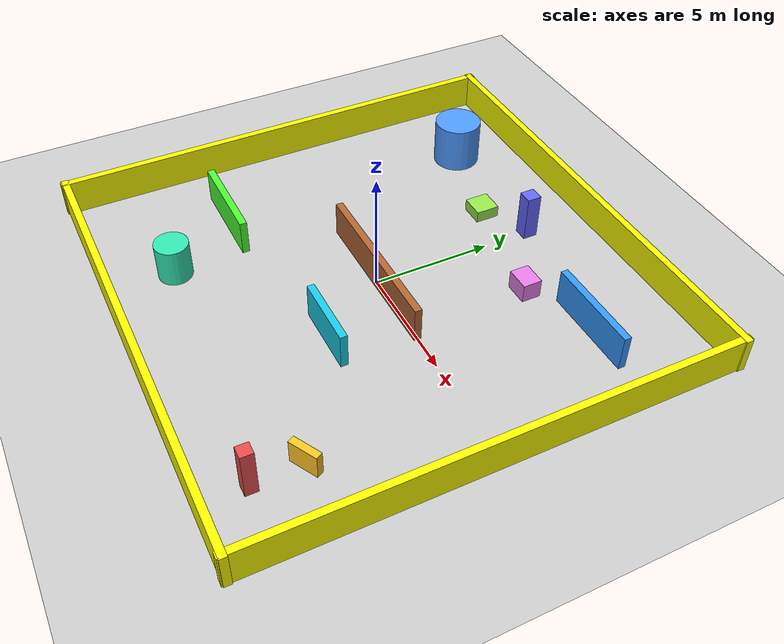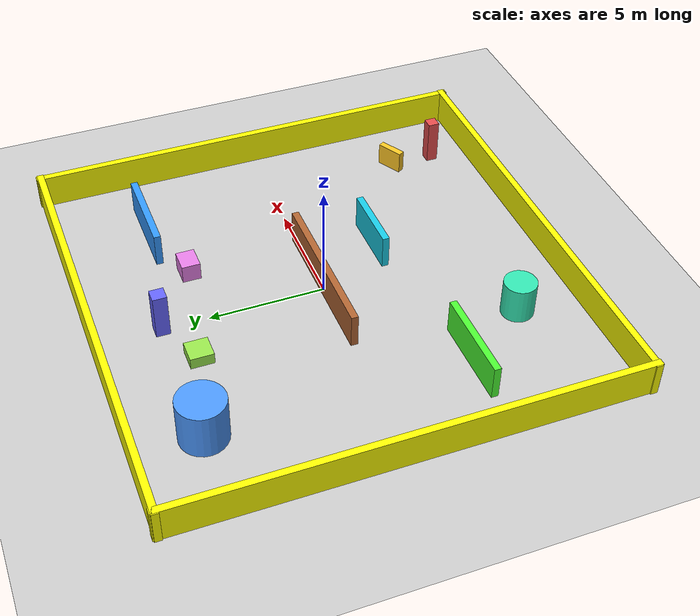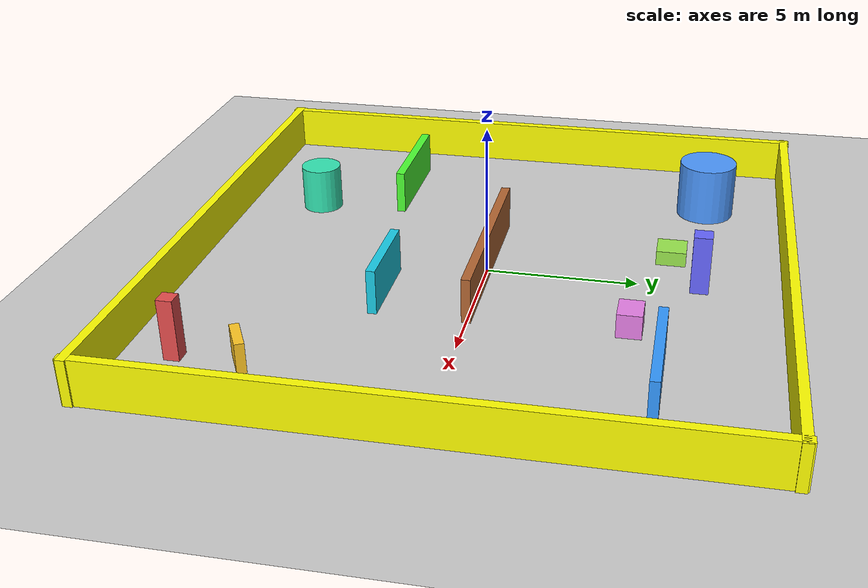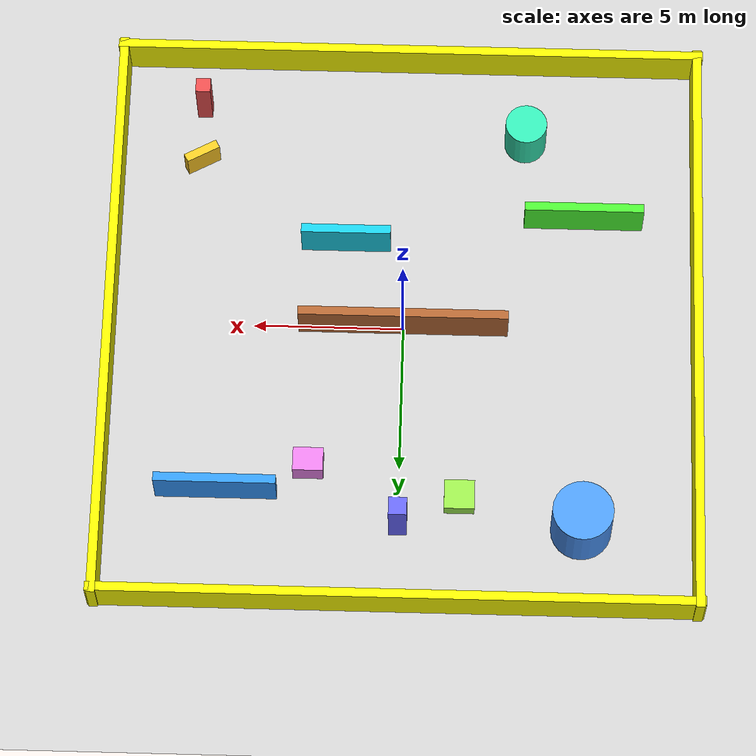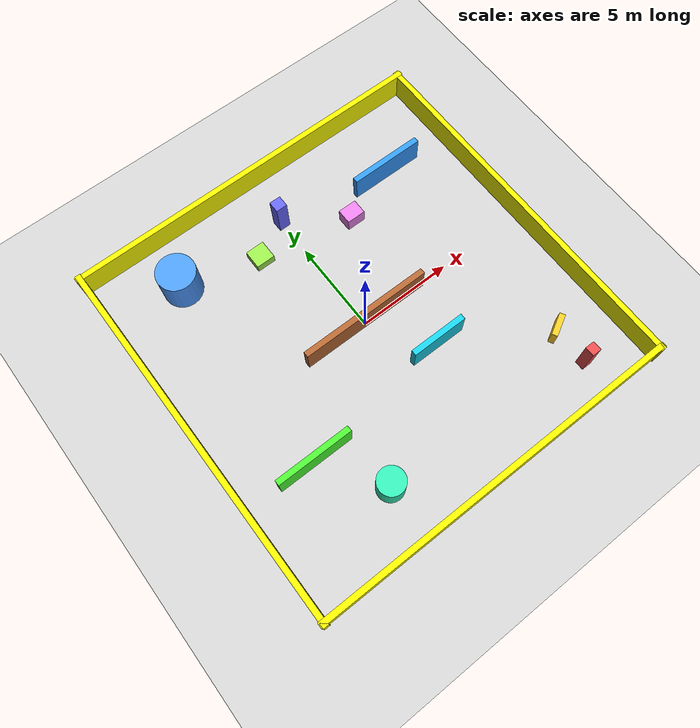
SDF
<?xml version="1.0" ?>
<sdf version="1.8">
  <world name="navigation_training_world">

    <!-- Physics Settings -->
    <physics name="default_physics" type="ode">
      <max_step_size>0.001</max_step_size>
      <real_time_factor>1.0</real_time_factor>
    </physics>

    <!-- Core systems -->
    <plugin filename="gz-sim-physics-system" name="gz::sim::systems::Physics"/>
    <plugin filename="gz-sim-user-commands-system" name="gz::sim::systems::UserCommands"/>
    <plugin filename="gz-sim-scene-broadcaster-system" name="gz::sim::systems::SceneBroadcaster"/>
    <plugin filename="gz-sim-sensors-system" name="gz::sim::systems::Sensors">
      <render_engine>ogre2</render_engine>
    </plugin>

    <!-- Sun Light -->
    <light type="directional" name="sun">
      <pose>0 0 10 0 0 0</pose>
      <diffuse>1 1 1 1</diffuse>
      <specular>0.5 0.5 0.5 1</specular>
      <direction>-0.5 0.1 -0.9</direction>
    </light>

    <model name="ground_plane">
      <static>true</static>
      <link name="link">
        <collision name="collision">
          <geometry>
            <plane>
              <normal>0 0 1</normal>
              <size>20 20</size>
            </plane>
          </geometry>
          <surface>
            <friction>
              <ode>
                <!-- Ground friction coefficients (tune as needed) -->
                <mu>1.0</mu>
                <mu2>1.0</mu2>
              </ode>
            </friction>
            <contact>
              <ode>
                <!-- Stiff, well-damped contact with wheels -->
                <kp>100000.0</kp>
                <kd>1.0</kd>
              </ode>
            </contact>
          </surface>
        </collision>
        <visual name="visual">
          <geometry>
            <plane>
              <normal>0 0 1</normal>
              <size>20 20</size>
            </plane>
          </geometry>
          <material>
            <ambient>0.8 0.8 0.8 1</ambient>
            <diffuse>0.8 0.8 0.8 1</diffuse>
          </material>
        </visual>
      </link>
    </model>

    <!-- Boundary Walls (Box) -->
    <model name="wall_north">
      <static>true</static>
      <pose>0 9.8 0.75 0 0 0</pose>
      <link name="link">
        <collision name="collision">
          <geometry>
            <box><size>20 0.3 1.5</size></box>
          </geometry>
        </collision>
        <visual name="visual">
          <geometry>
            <box><size>20 0.3 1.5</size></box>
          </geometry>
          <material>
            <ambient>1 1 0 1</ambient>
            <diffuse>1 1 0 1</diffuse>
          </material>
        </visual>
      </link>
    </model>

    <model name="wall_south">
      <static>true</static>
      <pose>0 -9.8 0.75 0 0 0</pose>
      <link name="link">
        <collision name="collision">
          <geometry>
            <box><size>20 0.3 1.5</size></box>
          </geometry>
        </collision>
        <visual name="visual">
          <geometry>
            <box><size>20 0.3 1.5</size></box>
          </geometry>
          <material>
            <ambient>1 1 0 1</ambient>
            <diffuse>1 1 0 1</diffuse>
          </material>
        </visual>
      </link>
    </model>

    <model name="wall_east">
      <static>true</static>
      <pose>9.8 0 0.75 0 0 1.5708</pose>
      <link name="link">
        <collision name="collision">
          <geometry>
            <box><size>20 0.3 1.5</size></box>
          </geometry>
        </collision>
        <visual name="visual">
          <geometry>
            <box><size>20 0.3 1.5</size></box>
          </geometry>
          <material>
            <ambient>1 1 0 1</ambient>
            <diffuse>1 1 0 1</diffuse>
          </material>
        </visual>
      </link>
    </model>

    <model name="wall_west">
      <static>true</static>
      <pose>-9.8 0 0.75 0 0 1.5708</pose>
      <link name="link">
        <collision name="collision">
          <geometry>
            <box><size>20 0.3 1.5</size></box>
          </geometry>
        </collision>
        <visual name="visual">
          <geometry>
            <box><size>20 0.3 1.5</size></box>
          </geometry>
          <material>
            <ambient>1 1 0 1</ambient>
            <diffuse>1 1 0 1</diffuse>
          </material>
        </visual>
      </link>
    </model>

    <!-- Center Horizontal Wall -->
    <model name="center_wall">
      <static>true</static>
      <pose>0 0 0.75 0 0 0</pose>
      <link name="link">
        <collision name="collision">
          <geometry>
            <box><size>7 0.3 1.5</size></box>
          </geometry>
        </collision>
        <visual name="visual">
          <geometry>
            <box><size>7 0.3 1.5</size></box>
          </geometry>
          <material>
            <ambient>0.7 0.4 0.2 1</ambient>
            <diffuse>0.7 0.4 0.2 1</diffuse>
          </material>
        </visual>
      </link>
    </model>

    <!-- Vertical Wall (near top right) -->
    <model name="vert_wall_1">
      <static>true</static>
      <pose>6 6 0.75 0 0 1.5708</pose>
      <link name="link">
        <collision name="collision">
          <geometry>
            <box><size>0.3 4 1.5</size></box>
          </geometry>
        </collision>
        <visual name="visual">
          <geometry>
            <box><size>0.3 4 1.5</size></box>
          </geometry>
          <material>
            <ambient>0.2 0.6 1 1</ambient>
            <diffuse>0.2 0.6 1 1</diffuse>
          </material>
        </visual>
      </link>
    </model>

    <!-- Horizontal Wall (lower left) -->
    <model name="horiz_wall_1">
      <static>true</static>
      <pose>-6 -4 0.75 0 0 0</pose>
      <link name="link">
        <collision name="collision">
          <geometry>
            <box><size>4 0.3 1.5</size></box>
          </geometry>
        </collision>
        <visual name="visual">
          <geometry>
            <box><size>4 0.3 1.5</size></box>
          </geometry>
          <material>
            <ambient>0.3 1 0.2 1</ambient>
            <diffuse>0.3 1 0.2 1</diffuse>
          </material>
        </visual>
      </link>
    </model>

    <!-- Cylinder obstacle (upper left) -->
    <model name="cylinder_obstacle">
      <static>true</static>
      <pose>-6 7 1 0 0 0</pose>
      <link name="link">
        <collision name="collision">
          <geometry>
            <cylinder>
              <radius>1</radius>
              <length>2</length>
            </cylinder>
          </geometry>
        </collision>
        <visual name="visual">
          <geometry>
            <cylinder>
              <radius>1</radius>
              <length>2</length>
            </cylinder>
          </geometry>
          <material>
            <ambient>0.3 0.6 1 1</ambient>
            <diffuse>0.3 0.6 1 1</diffuse>
          </material>
        </visual>
      </link>
    </model>

    <!-- Square box obstacle (upper center) -->
    <model name="square_obstacle">
      <static>true</static>
      <pose>-2 6 0.25 0 0 0</pose>
      <link name="link">
        <collision name="collision">
          <geometry>
            <box><size>1 1 0.5</size></box>
          </geometry>
        </collision>
        <visual name="visual">
          <geometry>
            <box><size>1 1 0.5</size></box>
          </geometry>
          <material>
            <ambient>0.6 0.9 0.3 1</ambient>
            <diffuse>0.6 0.9 0.3 1</diffuse>
          </material>
        </visual>
      </link>
    </model>

    <!-- Pillar obstacle (lower right) -->
    <model name="pillar_obstacle">
      <static>true</static>
      <pose>7 -8 1 0 0 0</pose>
      <link name="link">
        <collision name="collision">
          <geometry>
            <box><size>0.5 0.5 2</size></box>
          </geometry>
        </collision>
        <visual name="visual">
          <geometry>
            <box><size>0.5 0.5 2</size></box>
          </geometry>
          <material>
            <ambient>0.9 0.3 0.3 1</ambient>
            <diffuse>0.9 0.3 0.3 1</diffuse>
          </material>
        </visual>
      </link>
    </model>

    <!-- Wedge obstacle (lower right corner) -->
    <model name="wedge_obstacle">
      <static>true</static>
      <pose>7 -6 0.5 0 0 0.5</pose>
      <link name="link">
        <collision name="collision">
          <geometry>
            <box><size>1.2 0.3 1</size></box>
          </geometry>
        </collision>
        <visual name="visual">
          <geometry>
            <box><size>1.2 0.3 1</size></box>
          </geometry>
          <material>
            <ambient>1 0.78 0.14 1</ambient>
            <diffuse>1 0.78 0.14 1</diffuse>
          </material>
        </visual>
      </link>
    </model>

    <!--   EXTRA SIMPLE OBSTACLES  -->

    <!-- Extra box obstacle (right of center, mid-height) -->
    <model name="box_obstacle_2">
      <static>true</static>
      <pose>3 5 0.4 0 0 0</pose>
      <link name="link">
        <collision name="collision">
          <geometry>
            <box><size>1 0.8 0.8</size></box>
          </geometry>
        </collision>
        <visual name="visual">
          <geometry>
            <box><size>1 0.8 0.8</size></box>
          </geometry>
          <material>
            <ambient>0.9 0.5 0.9 1</ambient>
            <diffuse>0.9 0.5 0.9 1</diffuse>
          </material>
        </visual>
      </link>
    </model>

    <!-- Extra cylinder obstacle (bottom left area) -->
    <model name="cylinder_obstacle_2">
      <static>true</static>
      <pose>-4 -7 0.8 0 0 0</pose>
      <link name="link">
        <collision name="collision">
          <geometry>
            <cylinder>
              <radius>0.7</radius>
              <length>1.6</length>
            </cylinder>
          </geometry>
        </collision>
        <visual name="visual">
          <geometry>
            <cylinder>
              <radius>0.7</radius>
              <length>1.6</length>
            </cylinder>
          </geometry>
          <material>
            <ambient>0.2 0.9 0.7 1</ambient>
            <diffuse>0.2 0.9 0.7 1</diffuse>
          </material>
        </visual>
      </link>
    </model>

    <!-- Extra tall pillar obstacle (upper middle) -->
    <model name="pillar_obstacle_2">
      <static>true</static>
      <pose>0 7 1 0 0 0</pose>
      <link name="link">
        <collision name="collision">
          <geometry>
            <box><size>0.6 0.6 2</size></box>
          </geometry>
        </collision>
        <visual name="visual">
          <geometry>
            <box><size>0.6 0.6 2</size></box>
          </geometry>
          <material>
            <ambient>0.4 0.4 1 1</ambient>
            <diffuse>0.4 0.4 1 1</diffuse>
          </material>
        </visual>
      </link>
    </model>

    <!-- Extra short wall (center-right, lower half) -->
    <model name="short_wall_2">
      <static>true</static>
      <pose>2 -3 0.75 0 0 1.5708</pose>
      <link name="link">
        <collision name="collision">
          <geometry>
            <box><size>0.3 3 1.5</size></box>
          </geometry>
        </collision>
        <visual name="visual">
          <geometry>
            <box><size>0.3 3 1.5</size></box>
          </geometry>
          <material>
            <ambient>0.1 0.8 0.9 1</ambient>
            <diffuse>0.1 0.8 0.9 1</diffuse>
          </material>
        </visual>
      </link>
    </model>

  </world>
</sdf>
